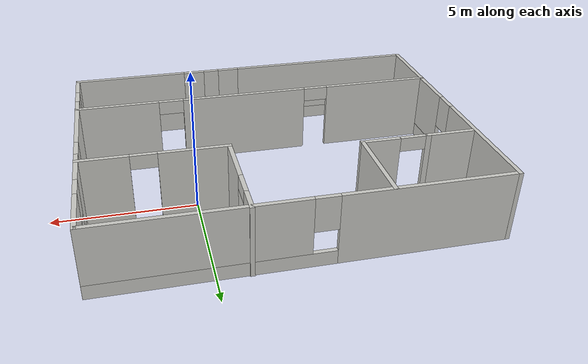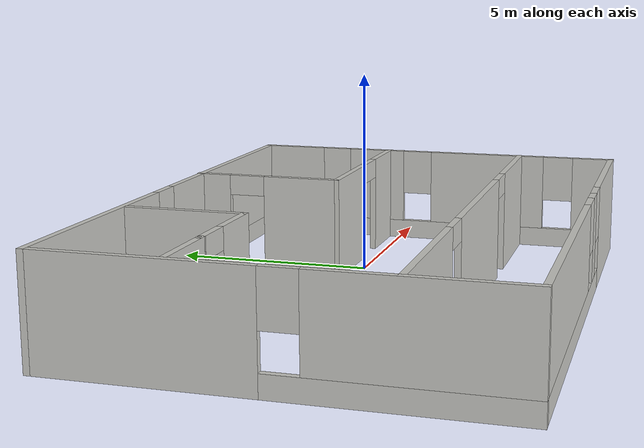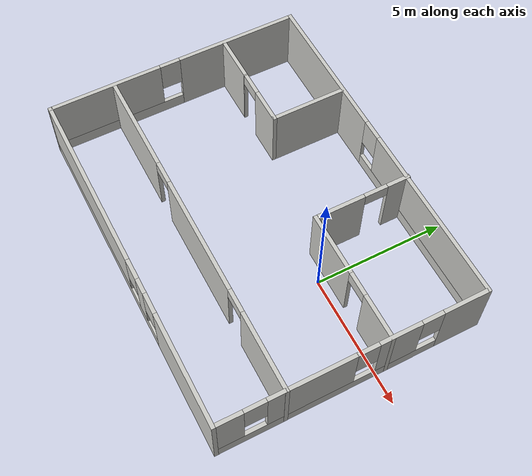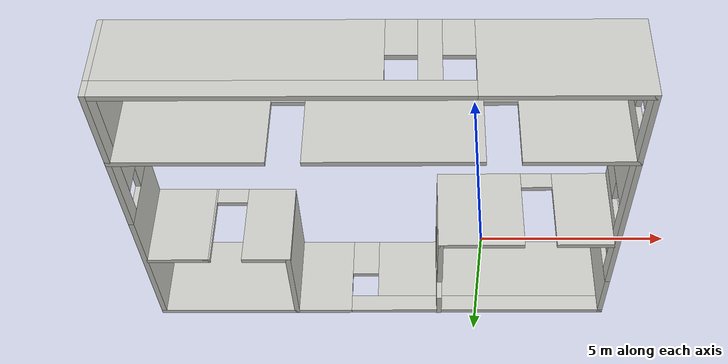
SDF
<?xml version='1.0'?>
<sdf version='1.5'>
  <model name='mr_simul'>
    <pose>-2.84835 -0.928721 0 0 -0 0</pose>
    <link name='Wall_0'>
      <pose>-6.67729 -0.018087 0 0 0 -1.5708</pose>
      <visual name='Wall_0_Visual_0'>
        <pose>-2.60269 0 1.25 0 -0 0</pose>
        <geometry>
          <box>
            <size>4.79462 0.15 2.5</size>
          </box>
        </geometry>
        <material>
          <script>
            <uri>file://media/materials/scripts/gazebo.material</uri>
            <name>Gazebo/CeilingTiled</name>
          </script>
          <ambient>1 1 1 1</ambient>
        </material>
      </visual>
      <collision name='Wall_0_Collision_0'>
        <geometry>
          <box>
            <size>4.79462 0.15 2.5</size>
          </box>
        </geometry>
        <pose>-2.60269 0 1.25 0 -0 0</pose>
      </collision>
      <visual name='Wall_0_Visual_1'>
        <pose>2.39731 0 0.25 0 -0 0</pose>
        <geometry>
          <box>
            <size>5.20538 0.15 0.5</size>
          </box>
        </geometry>
        <material>
          <script>
            <uri>file://media/materials/scripts/gazebo.material</uri>
            <name>Gazebo/CeilingTiled</name>
          </script>
          <ambient>1 1 1 1</ambient>
        </material>
      </visual>
      <collision name='Wall_0_Collision_1'>
        <geometry>
          <box>
            <size>5.20538 0.15 0.5</size>
          </box>
        </geometry>
        <pose>2.39731 0 0.25 0 -0 0</pose>
      </collision>
      <visual name='Wall_0_Visual_2'>
        <pose>2.79731 0 1.5 0 -0 0</pose>
        <geometry>
          <box>
            <size>4.40538 0.15 2</size>
          </box>
        </geometry>
        <material>
          <script>
            <uri>file://media/materials/scripts/gazebo.material</uri>
            <name>Gazebo/CeilingTiled</name>
          </script>
          <ambient>1 1 1 1</ambient>
        </material>
      </visual>
      <collision name='Wall_0_Collision_2'>
        <geometry>
          <box>
            <size>4.40538 0.15 2</size>
          </box>
        </geometry>
        <pose>2.79731 0 1.5 0 -0 0</pose>
      </collision>
      <visual name='Wall_0_Visual_3'>
        <pose>0.19462 0 1.9 0 -0 0</pose>
        <geometry>
          <box>
            <size>0.8 0.15 1.2</size>
          </box>
        </geometry>
        <material>
          <script>
            <uri>file://media/materials/scripts/gazebo.material</uri>
            <name>Gazebo/CeilingTiled</name>
          </script>
          <ambient>1 1 1 1</ambient>
        </material>
      </visual>
      <collision name='Wall_0_Collision_3'>
        <geometry>
          <box>
            <size>0.8 0.15 1.2</size>
          </box>
        </geometry>
        <pose>0.19462 0 1.9 0 -0 0</pose>
      </collision>
    </link>
    <link name='Wall_12'>
      <pose>1.74518 3.14309 0 0 0 -1.5708</pose>
      <visual name='Wall_12_Visual_0'>
        <pose>-1.42397 0 1.25 0 -0 0</pose>
        <geometry>
          <box>
            <size>0.902054 0.15 2.5</size>
          </box>
        </geometry>
        <material>
          <script>
            <uri>file://media/materials/scripts/gazebo.material</uri>
            <name>Gazebo/CeilingTiled</name>
          </script>
          <ambient>1 1 1 1</ambient>
        </material>
      </visual>
      <collision name='Wall_12_Collision_0'>
        <geometry>
          <box>
            <size>0.902054 0.15 2.5</size>
          </box>
        </geometry>
        <pose>-1.42397 0 1.25 0 -0 0</pose>
      </collision>
      <visual name='Wall_12_Visual_1'>
        <pose>0.901027 0 1.25 0 -0 0</pose>
        <geometry>
          <box>
            <size>1.94795 0.15 2.5</size>
          </box>
        </geometry>
        <material>
          <script>
            <uri>file://media/materials/scripts/gazebo.material</uri>
            <name>Gazebo/CeilingTiled</name>
          </script>
          <ambient>1 1 1 1</ambient>
        </material>
      </visual>
      <collision name='Wall_12_Collision_1'>
        <geometry>
          <box>
            <size>1.94795 0.15 2.5</size>
          </box>
        </geometry>
        <pose>0.901027 0 1.25 0 -0 0</pose>
      </collision>
      <visual name='Wall_12_Visual_2'>
        <pose>-0.522946 0 2.25 0 -0 0</pose>
        <geometry>
          <box>
            <size>0.9 0.15 0.5</size>
          </box>
        </geometry>
        <material>
          <script>
            <uri>file://media/materials/scripts/gazebo.material</uri>
            <name>Gazebo/CeilingTiled</name>
          </script>
          <ambient>1 1 1 1</ambient>
        </material>
      </visual>
      <collision name='Wall_12_Collision_2'>
        <geometry>
          <box>
            <size>0.9 0.15 0.5</size>
          </box>
        </geometry>
        <pose>-0.522946 0 2.25 0 -0 0</pose>
      </collision>
    </link>
    <link name='Wall_14'>
      <pose>4.20975 1.30681 0 0 -0 3.13631</pose>
      <visual name='Wall_14_Visual_0'>
        <pose>-1.66628 0 1.25 0 -0 0</pose>
        <geometry>
          <box>
            <size>1.74713 0.15 2.5</size>
          </box>
        </geometry>
        <material>
          <script>
            <uri>file://media/materials/scripts/gazebo.material</uri>
            <name>Gazebo/CeilingTiled</name>
          </script>
          <ambient>1 1 1 1</ambient>
        </material>
      </visual>
      <collision name='Wall_14_Collision_0'>
        <geometry>
          <box>
            <size>1.74713 0.15 2.5</size>
          </box>
        </geometry>
        <pose>-1.66628 0 1.25 0 -0 0</pose>
      </collision>
      <visual name='Wall_14_Visual_1'>
        <pose>1.32356 0 1.25 0 -0 0</pose>
        <geometry>
          <box>
            <size>2.43255 0.15 2.5</size>
          </box>
        </geometry>
        <material>
          <script>
            <uri>file://media/materials/scripts/gazebo.material</uri>
            <name>Gazebo/CeilingTiled</name>
          </script>
          <ambient>1 1 1 1</ambient>
        </material>
      </visual>
      <collision name='Wall_14_Collision_1'>
        <geometry>
          <box>
            <size>2.43255 0.15 2.5</size>
          </box>
        </geometry>
        <pose>1.32356 0 1.25 0 -0 0</pose>
      </collision>
      <visual name='Wall_14_Visual_2'>
        <pose>-0.342713 0 2.25 0 -0 0</pose>
        <geometry>
          <box>
            <size>0.9 0.15 0.5</size>
          </box>
        </geometry>
        <material>
          <script>
            <uri>file://media/materials/scripts/gazebo.material</uri>
            <name>Gazebo/CeilingTiled</name>
          </script>
          <ambient>1 1 1 1</ambient>
        </material>
      </visual>
      <collision name='Wall_14_Collision_2'>
        <geometry>
          <box>
            <size>0.9 0.15 0.5</size>
          </box>
        </geometry>
        <pose>-0.342713 0 2.25 0 -0 0</pose>
      </collision>
    </link>
    <link name='Wall_16'>
      <pose>0.002293 -2.45981 0 0 -0 0</pose>
      <visual name='Wall_16_Visual_0'>
        <pose>-4.7439 0 1.25 0 -0 0</pose>
        <geometry>
          <box>
            <size>4.0122 0.15 2.5</size>
          </box>
        </geometry>
        <material>
          <script>
            <uri>file://media/materials/scripts/gazebo.material</uri>
            <name>Gazebo/CeilingTiled</name>
          </script>
          <ambient>1 1 1 1</ambient>
        </material>
      </visual>
      <collision name='Wall_16_Collision_0'>
        <geometry>
          <box>
            <size>4.0122 0.15 2.5</size>
          </box>
        </geometry>
        <pose>-4.7439 0 1.25 0 -0 0</pose>
      </collision>
      <visual name='Wall_16_Visual_1'>
        <pose>0.494335 0 1.25 0 -0 0</pose>
        <geometry>
          <box>
            <size>4.66426 0.15 2.5</size>
          </box>
        </geometry>
        <material>
          <script>
            <uri>file://media/materials/scripts/gazebo.material</uri>
            <name>Gazebo/CeilingTiled</name>
          </script>
          <ambient>1 1 1 1</ambient>
        </material>
      </visual>
      <collision name='Wall_16_Collision_1'>
        <geometry>
          <box>
            <size>4.66426 0.15 2.5</size>
          </box>
        </geometry>
        <pose>0.494335 0 1.25 0 -0 0</pose>
      </collision>
      <visual name='Wall_16_Visual_2'>
        <pose>5.23823 0 1.25 0 -0 0</pose>
        <geometry>
          <box>
            <size>3.02353 0.15 2.5</size>
          </box>
        </geometry>
        <material>
          <script>
            <uri>file://media/materials/scripts/gazebo.material</uri>
            <name>Gazebo/CeilingTiled</name>
          </script>
          <ambient>1 1 1 1</ambient>
        </material>
      </visual>
      <collision name='Wall_16_Collision_2'>
        <geometry>
          <box>
            <size>3.02353 0.15 2.5</size>
          </box>
        </geometry>
        <pose>5.23823 0 1.25 0 -0 0</pose>
      </collision>
      <visual name='Wall_16_Visual_3'>
        <pose>-2.2878 0 2.25 0 -0 0</pose>
        <geometry>
          <box>
            <size>0.9 0.15 0.5</size>
          </box>
        </geometry>
        <material>
          <script>
            <uri>file://media/materials/scripts/gazebo.material</uri>
            <name>Gazebo/CeilingTiled</name>
          </script>
          <ambient>1 1 1 1</ambient>
        </material>
      </visual>
      <collision name='Wall_16_Collision_3'>
        <geometry>
          <box>
            <size>0.9 0.15 0.5</size>
          </box>
        </geometry>
        <pose>-2.2878 0 2.25 0 -0 0</pose>
      </collision>
      <visual name='Wall_16_Visual_4'>
        <pose>3.27646 0 2.25 0 -0 0</pose>
        <geometry>
          <box>
            <size>0.9 0.15 0.5</size>
          </box>
        </geometry>
        <material>
          <script>
            <uri>file://media/materials/scripts/gazebo.material</uri>
            <name>Gazebo/CeilingTiled</name>
          </script>
          <ambient>1 1 1 1</ambient>
        </material>
      </visual>
      <collision name='Wall_16_Collision_4'>
        <geometry>
          <box>
            <size>0.9 0.15 0.5</size>
          </box>
        </geometry>
        <pose>3.27646 0 2.25 0 -0 0</pose>
      </collision>
    </link>
    <link name='Wall_18'>
      <collision name='Wall_18_Collision'>
        <geometry>
          <box>
            <size>1.75 0.15 2.5</size>
          </box>
        </geometry>
        <pose>0 0 1.25 0 -0 0</pose>
      </collision>
      <visual name='Wall_18_Visual'>
        <pose>0 0 1.25 0 -0 0</pose>
        <geometry>
          <box>
            <size>1.75 0.15 2.5</size>
          </box>
        </geometry>
        <material>
          <script>
            <uri>file://media/materials/scripts/gazebo.material</uri>
            <name>Gazebo/CeilingTiled</name>
          </script>
          <ambient>1 1 1 1</ambient>
        </material>
      </visual>
      <pose>-5.75654 2.04702 0 0 -0 3.14159</pose>
    </link>
    <link name='Wall_2'>
      <pose>-0.002292 4.90691 0 0 -0 0</pose>
      <visual name='Wall_2_Visual_0'>
        <pose>-3.83717 0 1.25 0 -0 0</pose>
        <geometry>
          <box>
            <size>5.82566 0.15 2.5</size>
          </box>
        </geometry>
        <material>
          <script>
            <uri>file://media/materials/scripts/gazebo.material</uri>
            <name>Gazebo/CeilingTiled</name>
          </script>
          <ambient>1 1 1 1</ambient>
        </material>
      </visual>
      <collision name='Wall_2_Collision_0'>
        <geometry>
          <box>
            <size>5.82566 0.15 2.5</size>
          </box>
        </geometry>
        <pose>-3.83717 0 1.25 0 -0 0</pose>
      </collision>
      <visual name='Wall_2_Visual_1'>
        <pose>2.91283 0 0.25 0 -0 0</pose>
        <geometry>
          <box>
            <size>7.67434 0.15 0.5</size>
          </box>
        </geometry>
        <material>
          <script>
            <uri>file://media/materials/scripts/gazebo.material</uri>
            <name>Gazebo/CeilingTiled</name>
          </script>
          <ambient>1 1 1 1</ambient>
        </material>
      </visual>
      <collision name='Wall_2_Collision_1'>
        <geometry>
          <box>
            <size>7.67434 0.15 0.5</size>
          </box>
        </geometry>
        <pose>2.91283 0 0.25 0 -0 0</pose>
      </collision>
      <visual name='Wall_2_Visual_2'>
        <pose>3.31283 0 1.5 0 -0 0</pose>
        <geometry>
          <box>
            <size>6.87434 0.15 2</size>
          </box>
        </geometry>
        <material>
          <script>
            <uri>file://media/materials/scripts/gazebo.material</uri>
            <name>Gazebo/CeilingTiled</name>
          </script>
          <ambient>1 1 1 1</ambient>
        </material>
      </visual>
      <collision name='Wall_2_Collision_2'>
        <geometry>
          <box>
            <size>6.87434 0.15 2</size>
          </box>
        </geometry>
        <pose>3.31283 0 1.5 0 -0 0</pose>
      </collision>
      <visual name='Wall_2_Visual_3'>
        <pose>-0.524345 0 1.9 0 -0 0</pose>
        <geometry>
          <box>
            <size>0.8 0.15 1.2</size>
          </box>
        </geometry>
        <material>
          <script>
            <uri>file://media/materials/scripts/gazebo.material</uri>
            <name>Gazebo/CeilingTiled</name>
          </script>
          <ambient>1 1 1 1</ambient>
        </material>
      </visual>
      <collision name='Wall_2_Collision_3'>
        <geometry>
          <box>
            <size>0.8 0.15 1.2</size>
          </box>
        </geometry>
        <pose>-0.524345 0 1.9 0 -0 0</pose>
      </collision>
    </link>
    <link name='Wall_3'>
      <pose>6.67271 -0.018087 0 0 0 -1.5708</pose>
      <visual name='Wall_3_Visual_0'>
        <pose>-4.11122 0 1.25 0 -0 0</pose>
        <geometry>
          <box>
            <size>1.77755 0.15 2.5</size>
          </box>
        </geometry>
        <material>
          <script>
            <uri>file://media/materials/scripts/gazebo.material</uri>
            <name>Gazebo/CeilingTiled</name>
          </script>
          <ambient>1 1 1 1</ambient>
        </material>
      </visual>
      <collision name='Wall_3_Collision_0'>
        <geometry>
          <box>
            <size>1.77755 0.15 2.5</size>
          </box>
        </geometry>
        <pose>-4.11122 0 1.25 0 -0 0</pose>
      </collision>
      <visual name='Wall_3_Visual_1'>
        <pose>0.888778 0 0.25 0 -0 0</pose>
        <geometry>
          <box>
            <size>8.22245 0.15 0.5</size>
          </box>
        </geometry>
        <material>
          <script>
            <uri>file://media/materials/scripts/gazebo.material</uri>
            <name>Gazebo/CeilingTiled</name>
          </script>
          <ambient>1 1 1 1</ambient>
        </material>
      </visual>
      <collision name='Wall_3_Collision_1'>
        <geometry>
          <box>
            <size>8.22245 0.15 0.5</size>
          </box>
        </geometry>
        <pose>0.888778 0 0.25 0 -0 0</pose>
      </collision>
      <visual name='Wall_3_Visual_2'>
        <pose>-1.63726 0 1.5 0 -0 0</pose>
        <geometry>
          <box>
            <size>1.57036 0.15 2</size>
          </box>
        </geometry>
        <material>
          <script>
            <uri>file://media/materials/scripts/gazebo.material</uri>
            <name>Gazebo/CeilingTiled</name>
          </script>
          <ambient>1 1 1 1</ambient>
        </material>
      </visual>
      <collision name='Wall_3_Collision_2'>
        <geometry>
          <box>
            <size>1.57036 0.15 2</size>
          </box>
        </geometry>
        <pose>-1.63726 0 1.5 0 -0 0</pose>
      </collision>
      <visual name='Wall_3_Visual_3'>
        <pose>1.52985 0 1.5 0 -0 0</pose>
        <geometry>
          <box>
            <size>3.16386 0.15 2</size>
          </box>
        </geometry>
        <material>
          <script>
            <uri>file://media/materials/scripts/gazebo.material</uri>
            <name>Gazebo/CeilingTiled</name>
          </script>
          <ambient>1 1 1 1</ambient>
        </material>
      </visual>
      <collision name='Wall_3_Collision_3'>
        <geometry>
          <box>
            <size>3.16386 0.15 2</size>
          </box>
        </geometry>
        <pose>1.52985 0 1.5 0 -0 0</pose>
      </collision>
      <visual name='Wall_3_Visual_4'>
        <pose>4.45589 0 1.5 0 -0 0</pose>
        <geometry>
          <box>
            <size>1.08822 0.15 2</size>
          </box>
        </geometry>
        <material>
          <script>
            <uri>file://media/materials/scripts/gazebo.material</uri>
            <name>Gazebo/CeilingTiled</name>
          </script>
          <ambient>1 1 1 1</ambient>
        </material>
      </visual>
      <collision name='Wall_3_Collision_4'>
        <geometry>
          <box>
            <size>1.08822 0.15 2</size>
          </box>
        </geometry>
        <pose>4.45589 0 1.5 0 -0 0</pose>
      </collision>
      <visual name='Wall_3_Visual_5'>
        <pose>-2.82245 0 1.9 0 -0 0</pose>
        <geometry>
          <box>
            <size>0.8 0.15 1.2</size>
          </box>
        </geometry>
        <material>
          <script>
            <uri>file://media/materials/scripts/gazebo.material</uri>
            <name>Gazebo/CeilingTiled</name>
          </script>
          <ambient>1 1 1 1</ambient>
        </material>
      </visual>
      <collision name='Wall_3_Collision_5'>
        <geometry>
          <box>
            <size>0.8 0.15 1.2</size>
          </box>
        </geometry>
        <pose>-2.82245 0 1.9 0 -0 0</pose>
      </collision>
      <visual name='Wall_3_Visual_6'>
        <pose>-0.452083 0 1.9 0 -0 0</pose>
        <geometry>
          <box>
            <size>0.8 0.15 1.2</size>
          </box>
        </geometry>
        <material>
          <script>
            <uri>file://media/materials/scripts/gazebo.material</uri>
            <name>Gazebo/CeilingTiled</name>
          </script>
          <ambient>1 1 1 1</ambient>
        </material>
      </visual>
      <collision name='Wall_3_Collision_6'>
        <geometry>
          <box>
            <size>0.8 0.15 1.2</size>
          </box>
        </geometry>
        <pose>-0.452083 0 1.9 0 -0 0</pose>
      </collision>
      <visual name='Wall_3_Visual_7'>
        <pose>3.51178 0 1.9 0 -0 0</pose>
        <geometry>
          <box>
            <size>0.8 0.15 1.2</size>
          </box>
        </geometry>
        <material>
          <script>
            <uri>file://media/materials/scripts/gazebo.material</uri>
            <name>Gazebo/CeilingTiled</name>
          </script>
          <ambient>1 1 1 1</ambient>
        </material>
      </visual>
      <collision name='Wall_3_Collision_7'>
        <geometry>
          <box>
            <size>0.8 0.15 1.2</size>
          </box>
        </geometry>
        <pose>3.51178 0 1.9 0 -0 0</pose>
      </collision>
    </link>
    <link name='Wall_4'>
      <pose>-0.002292 -4.94309 0 0 -0 3.14159</pose>
      <visual name='Wall_4_Visual_0'>
        <pose>-4.627 0 1.25 0 -0 0</pose>
        <geometry>
          <box>
            <size>4.24601 0.15 2.5</size>
          </box>
        </geometry>
        <material>
          <script>
            <uri>file://media/materials/scripts/gazebo.material</uri>
            <name>Gazebo/CeilingTiled</name>
          </script>
          <ambient>1 1 1 1</ambient>
        </material>
      </visual>
      <collision name='Wall_4_Collision_0'>
        <geometry>
          <box>
            <size>4.24601 0.15 2.5</size>
          </box>
        </geometry>
        <pose>-4.627 0 1.25 0 -0 0</pose>
      </collision>
      <visual name='Wall_4_Visual_1'>
        <pose>2.123 0 0.25 0 -0 0</pose>
        <geometry>
          <box>
            <size>9.25399 0.15 0.5</size>
          </box>
        </geometry>
        <material>
          <script>
            <uri>file://media/materials/scripts/gazebo.material</uri>
            <name>Gazebo/CeilingTiled</name>
          </script>
          <ambient>1 1 1 1</ambient>
        </material>
      </visual>
      <collision name='Wall_4_Collision_1'>
        <geometry>
          <box>
            <size>9.25399 0.15 0.5</size>
          </box>
        </geometry>
        <pose>2.123 0 0.25 0 -0 0</pose>
      </collision>
      <visual name='Wall_4_Visual_2'>
        <pose>-1.40846 0 1.5 0 -0 0</pose>
        <geometry>
          <box>
            <size>0.591065 0.15 2</size>
          </box>
        </geometry>
        <material>
          <script>
            <uri>file://media/materials/scripts/gazebo.material</uri>
            <name>Gazebo/CeilingTiled</name>
          </script>
          <ambient>1 1 1 1</ambient>
        </material>
      </visual>
      <collision name='Wall_4_Collision_2'>
        <geometry>
          <box>
            <size>0.591065 0.15 2</size>
          </box>
        </geometry>
        <pose>-1.40846 0 1.5 0 -0 0</pose>
      </collision>
      <visual name='Wall_4_Visual_3'>
        <pose>3.21854 0 1.5 0 -0 0</pose>
        <geometry>
          <box>
            <size>7.06293 0.15 2</size>
          </box>
        </geometry>
        <material>
          <script>
            <uri>file://media/materials/scripts/gazebo.material</uri>
            <name>Gazebo/CeilingTiled</name>
          </script>
          <ambient>1 1 1 1</ambient>
        </material>
      </visual>
      <collision name='Wall_4_Collision_3'>
        <geometry>
          <box>
            <size>7.06293 0.15 2</size>
          </box>
        </geometry>
        <pose>3.21854 0 1.5 0 -0 0</pose>
      </collision>
      <visual name='Wall_4_Visual_4'>
        <pose>-2.10399 0 1.9 0 -0 0</pose>
        <geometry>
          <box>
            <size>0.8 0.15 1.2</size>
          </box>
        </geometry>
        <material>
          <script>
            <uri>file://media/materials/scripts/gazebo.material</uri>
            <name>Gazebo/CeilingTiled</name>
          </script>
          <ambient>1 1 1 1</ambient>
        </material>
      </visual>
      <collision name='Wall_4_Collision_4'>
        <geometry>
          <box>
            <size>0.8 0.15 1.2</size>
          </box>
        </geometry>
        <pose>-2.10399 0 1.9 0 -0 0</pose>
      </collision>
      <visual name='Wall_4_Visual_5'>
        <pose>-0.712929 0 1.9 0 -0 0</pose>
        <geometry>
          <box>
            <size>0.8 0.15 1.2</size>
          </box>
        </geometry>
        <material>
          <script>
            <uri>file://media/materials/scripts/gazebo.material</uri>
            <name>Gazebo/CeilingTiled</name>
          </script>
          <ambient>1 1 1 1</ambient>
        </material>
      </visual>
      <collision name='Wall_4_Collision_5'>
        <geometry>
          <box>
            <size>0.8 0.15 1.2</size>
          </box>
        </geometry>
        <pose>-0.712929 0 1.9 0 -0 0</pose>
      </collision>
    </link>
    <link name='Wall_6'>
      <collision name='Wall_6_Collision'>
        <geometry>
          <box>
            <size>3 0.15 2.5</size>
          </box>
        </geometry>
        <pose>0 0 1.25 0 -0 0</pose>
      </collision>
      <visual name='Wall_6_Visual'>
        <pose>0 0 1.25 0 -0 0</pose>
        <geometry>
          <box>
            <size>3 0.15 2.5</size>
          </box>
        </geometry>
        <material>
          <script>
            <uri>file://media/materials/scripts/gazebo.material</uri>
            <name>Gazebo/CeilingTiled</name>
          </script>
          <ambient>1 1 1 1</ambient>
        </material>
      </visual>
      <pose>-2.60654 3.47202 0 0 0 -1.5708</pose>
    </link>
    <link name='Wall_7'>
      <pose>-3.78154 2.04702 0 0 -0 3.14159</pose>
      <visual name='Wall_7_Visual_0'>
        <pose>-0.549322 0 1.25 0 -0 0</pose>
        <geometry>
          <box>
            <size>1.40136 0.15 2.5</size>
          </box>
        </geometry>
        <material>
          <script>
            <uri>file://media/materials/scripts/gazebo.material</uri>
            <name>Gazebo/CeilingTiled</name>
          </script>
          <ambient>1 1 1 1</ambient>
        </material>
      </visual>
      <collision name='Wall_7_Collision_0'>
        <geometry>
          <box>
            <size>1.40136 0.15 2.5</size>
          </box>
        </geometry>
        <pose>-0.549322 0 1.25 0 -0 0</pose>
      </collision>
      <visual name='Wall_7_Visual_1'>
        <pose>1.15068 0 1.25 0 -0 0</pose>
        <geometry>
          <box>
            <size>0.198644 0.15 2.5</size>
          </box>
        </geometry>
        <material>
          <script>
            <uri>file://media/materials/scripts/gazebo.material</uri>
            <name>Gazebo/CeilingTiled</name>
          </script>
          <ambient>1 1 1 1</ambient>
        </material>
      </visual>
      <collision name='Wall_7_Collision_1'>
        <geometry>
          <box>
            <size>0.198644 0.15 2.5</size>
          </box>
        </geometry>
        <pose>1.15068 0 1.25 0 -0 0</pose>
      </collision>
      <visual name='Wall_7_Visual_2'>
        <pose>0.601356 0 2.25 0 -0 0</pose>
        <geometry>
          <box>
            <size>0.9 0.15 0.5</size>
          </box>
        </geometry>
        <material>
          <script>
            <uri>file://media/materials/scripts/gazebo.material</uri>
            <name>Gazebo/CeilingTiled</name>
          </script>
          <ambient>1 1 1 1</ambient>
        </material>
      </visual>
      <collision name='Wall_7_Collision_2'>
        <geometry>
          <box>
            <size>0.9 0.15 0.5</size>
          </box>
        </geometry>
        <pose>0.601356 0 2.25 0 -0 0</pose>
      </collision>
    </link>
    <static>1</static>
  </model>
</sdf>
